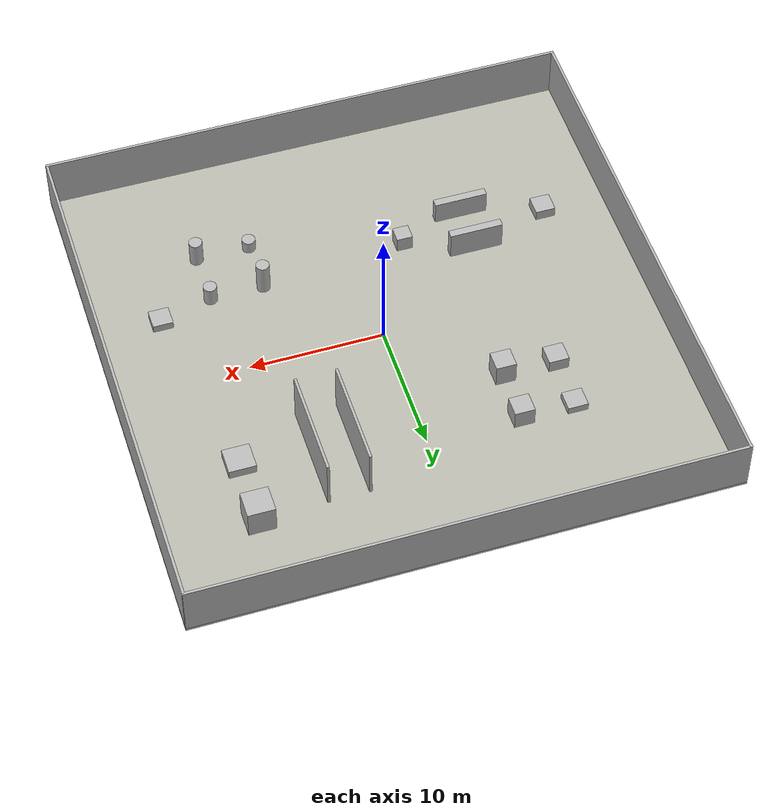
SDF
<?xml version="1.0"?>
<sdf version="1.6">
  <world name="amr_demo">
    <include><uri>model://sun</uri></include>
    <!-- Ground top is z=0; size and walls are 40 x 40 m. -->
    <model name="ground">
      <static>true</static><pose>0 0 -0.1 0 0 0</pose>
      <link name="surface">
        <collision name="collision"><geometry><box><size>40 40 0.2</size></box></geometry></collision>
        <visual name="visual">
          <geometry><box><size>40 40 0.2</size></box></geometry>
          <material><ambient>0.72 0.72 0.68 1</ambient><diffuse>0.72 0.72 0.68 1</diffuse></material>
        </visual>
      </link>
    </model>

    <!-- Four 4 m high walls enclose a 40 x 40 m arena. -->
    <model name="north_boundary">
      <static>true</static><pose>0 19.9 2 0 0 0</pose>
      <link name="body">
        <collision name="collision"><geometry><box><size>40 0.2 4</size></box></geometry></collision>
        <visual name="visual"><geometry><box><size>40 0.2 4</size></box></geometry></visual>
      </link>
    </model>
    <model name="south_boundary">
      <static>true</static><pose>0 -19.9 2 0 0 0</pose>
      <link name="body">
        <collision name="collision"><geometry><box><size>40 0.2 4</size></box></geometry></collision>
        <visual name="visual"><geometry><box><size>40 0.2 4</size></box></geometry></visual>
      </link>
    </model>
    <model name="east_boundary">
      <static>true</static><pose>19.9 0 2 0 0 0</pose>
      <link name="body">
        <collision name="collision"><geometry><box><size>0.2 40 4</size></box></geometry></collision>
        <visual name="visual"><geometry><box><size>0.2 40 4</size></box></geometry></visual>
      </link>
    </model>
    <model name="west_boundary">
      <static>true</static><pose>-19.9 0 2 0 0 0</pose>
      <link name="body">
        <collision name="collision"><geometry><box><size>0.2 40 4</size></box></geometry></collision>
        <visual name="visual"><geometry><box><size>0.2 40 4</size></box></geometry></visual>
      </link>
    </model>

    <!-- Origin is clear in a 6 x 6 m square. North-east walls form a 2.8 m clear corridor. -->
    <model name="ne_wall_west">
      <static>true</static><pose>5 9 2 0 0 0</pose>
      <link name="body">
        <collision name="collision"><geometry><box><size>0.2 8 4</size></box></geometry></collision>
        <visual name="visual"><geometry><box><size>0.2 8 4</size></box></geometry></visual>
      </link>
    </model>
    <model name="ne_wall_east">
      <static>true</static><pose>8 9 2 0 0 0</pose>
      <link name="body">
        <collision name="collision"><geometry><box><size>0.2 8 4</size></box></geometry></collision>
        <visual name="visual"><geometry><box><size>0.2 8 4</size></box></geometry></visual>
      </link>
    </model>
    <model name="ne_low_block">
      <static>true</static><pose>13 8 0.35 0 0 0</pose>
      <link name="body">
        <collision name="collision"><geometry><box><size>2 2 0.7</size></box></geometry></collision>
        <visual name="visual"><geometry><box><size>2 2 0.7</size></box></geometry></visual>
      </link>
    </model>

    <!-- North-west crates: 2.5 m minimum gap between adjacent crates. -->
    <model name="nw_crate_south_west">
      <static>true</static><pose>-11 6 0.5 0 0 0</pose>
      <link name="body">
        <collision name="collision"><geometry><box><size>1.5 1.5 1</size></box></geometry></collision>
        <visual name="visual"><geometry><box><size>1.5 1.5 1</size></box></geometry></visual>
      </link>
    </model>
    <model name="nw_crate_south_east">
      <static>true</static><pose>-7 6 0.9 0 0 0</pose>
      <link name="body">
        <collision name="collision"><geometry><box><size>1.5 1.5 1.8</size></box></geometry></collision>
        <visual name="visual"><geometry><box><size>1.5 1.5 1.8</size></box></geometry></visual>
      </link>
    </model>
    <model name="nw_crate_north_west">
      <static>true</static><pose>-11 10 0.3 0 0 0</pose>
      <link name="body">
        <collision name="collision"><geometry><box><size>1.5 1.5 0.6</size></box></geometry></collision>
        <visual name="visual"><geometry><box><size>1.5 1.5 0.6</size></box></geometry></visual>
      </link>
    </model>
    <model name="nw_crate_north_east">
      <static>true</static><pose>-7 10 0.75 0 0 0</pose>
      <link name="body">
        <collision name="collision"><geometry><box><size>1.5 1.5 1.5</size></box></geometry></collision>
        <visual name="visual"><geometry><box><size>1.5 1.5 1.5</size></box></geometry></visual>
      </link>
    </model>

    <!-- South-west shelves: 3 m clear aisle between the two rows. -->
    <model name="sw_shelf_north">
      <static>true</static><pose>-9 -6 1.1 0 0 0</pose>
      <link name="body">
        <collision name="collision"><geometry><box><size>4 0.6 2.2</size></box></geometry></collision>
        <visual name="visual"><geometry><box><size>4 0.6 2.2</size></box></geometry></visual>
      </link>
    </model>
    <model name="sw_shelf_south">
      <static>true</static><pose>-9 -9.6 0.9 0 0 0</pose>
      <link name="body">
        <collision name="collision"><geometry><box><size>4 0.6 1.8</size></box></geometry></collision>
        <visual name="visual"><geometry><box><size>4 0.6 1.8</size></box></geometry></visual>
      </link>
    </model>
    <model name="sw_crate_west">
      <static>true</static><pose>-15 -8 0.4 0 0 0</pose>
      <link name="body">
        <collision name="collision"><geometry><box><size>1.5 1.5 0.8</size></box></geometry></collision>
        <visual name="visual"><geometry><box><size>1.5 1.5 0.8</size></box></geometry></visual>
      </link>
    </model>
    <model name="sw_crate_east">
      <static>true</static><pose>-4 -8 0.6 0 0 0</pose>
      <link name="body">
        <collision name="collision"><geometry><box><size>1.2 1.2 1.2</size></box></geometry></collision>
        <visual name="visual"><geometry><box><size>1.2 1.2 1.2</size></box></geometry></visual>
      </link>
    </model>

    <!-- South-east columns and extra blocks offer returns at varied heights. -->
    <model name="se_column_north_west">
      <static>true</static><pose>7 -7 1.25 0 0 0</pose>
      <link name="body">
        <collision name="collision"><geometry><cylinder><radius>0.5</radius><length>2.5</length></cylinder></geometry></collision>
        <visual name="visual"><geometry><cylinder><radius>0.5</radius><length>2.5</length></cylinder></geometry></visual>
      </link>
    </model>
    <model name="se_column_north_east">
      <static>true</static><pose>11 -7 0.75 0 0 0</pose>
      <link name="body">
        <collision name="collision"><geometry><cylinder><radius>0.5</radius><length>1.5</length></cylinder></geometry></collision>
        <visual name="visual"><geometry><cylinder><radius>0.5</radius><length>1.5</length></cylinder></geometry></visual>
      </link>
    </model>
    <model name="se_column_south_west">
      <static>true</static><pose>7 -11 0.5 0 0 0</pose>
      <link name="body">
        <collision name="collision"><geometry><cylinder><radius>0.5</radius><length>1</length></cylinder></geometry></collision>
        <visual name="visual"><geometry><cylinder><radius>0.5</radius><length>1</length></cylinder></geometry></visual>
      </link>
    </model>
    <model name="se_column_south_east">
      <static>true</static><pose>11 -11 1 0 0 0</pose>
      <link name="body">
        <collision name="collision"><geometry><cylinder><radius>0.5</radius><length>2</length></cylinder></geometry></collision>
        <visual name="visual"><geometry><cylinder><radius>0.5</radius><length>2</length></cylinder></geometry></visual>
      </link>
    </model>
    <model name="se_low_crate">
      <static>true</static><pose>15 -6 0.3 0 0 0</pose>
      <link name="body">
        <collision name="collision"><geometry><box><size>1.5 1.5 0.6</size></box></geometry></collision>
        <visual name="visual"><geometry><box><size>1.5 1.5 0.6</size></box></geometry></visual>
      </link>
    </model>
    <model name="ne_high_block">
      <static>true</static><pose>13 13 1.1 0 0 0</pose>
      <link name="body">
        <collision name="collision"><geometry><box><size>2 2 2.2</size></box></geometry></collision>
        <visual name="visual"><geometry><box><size>2 2 2.2</size></box></geometry></visual>
      </link>
    </model>
  </world>
</sdf>
